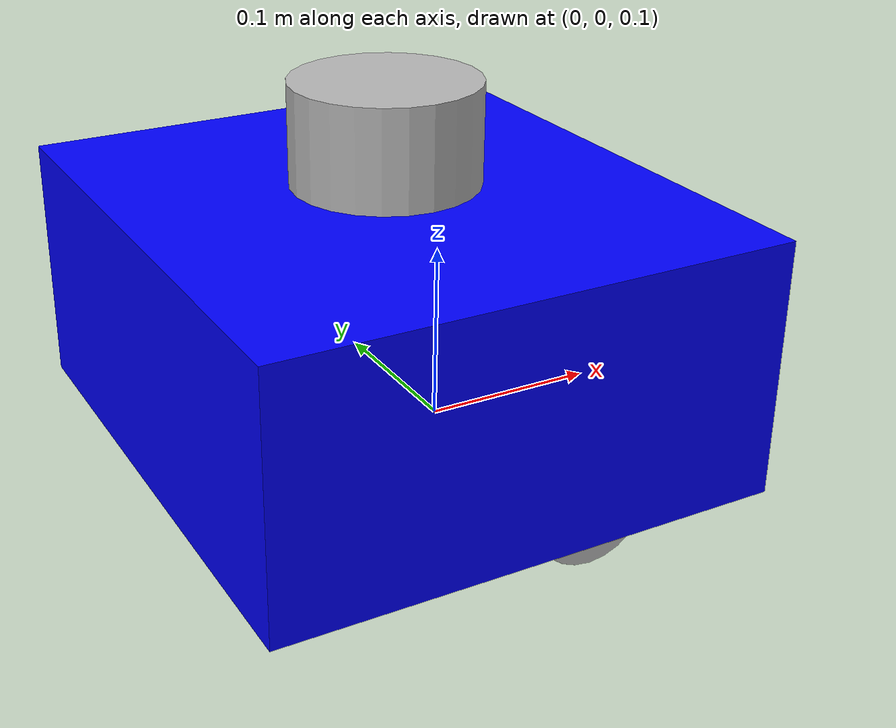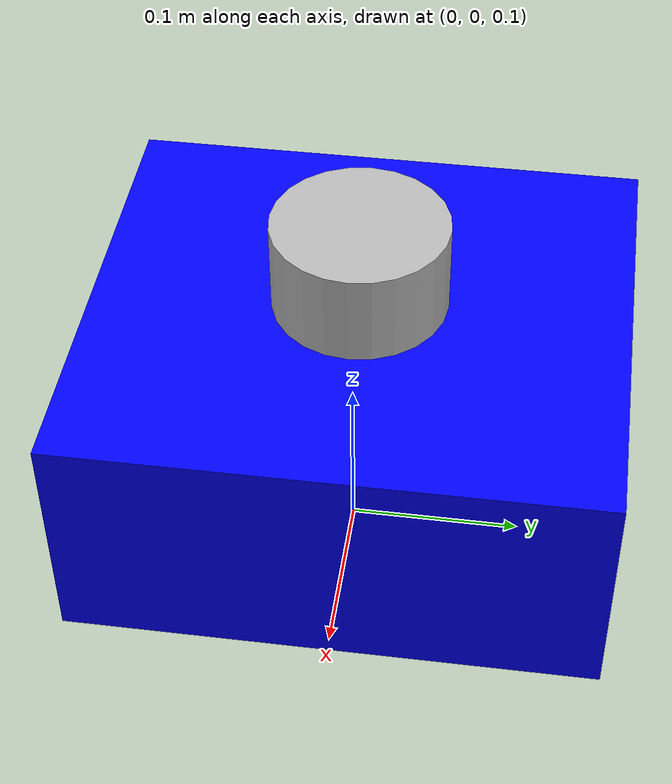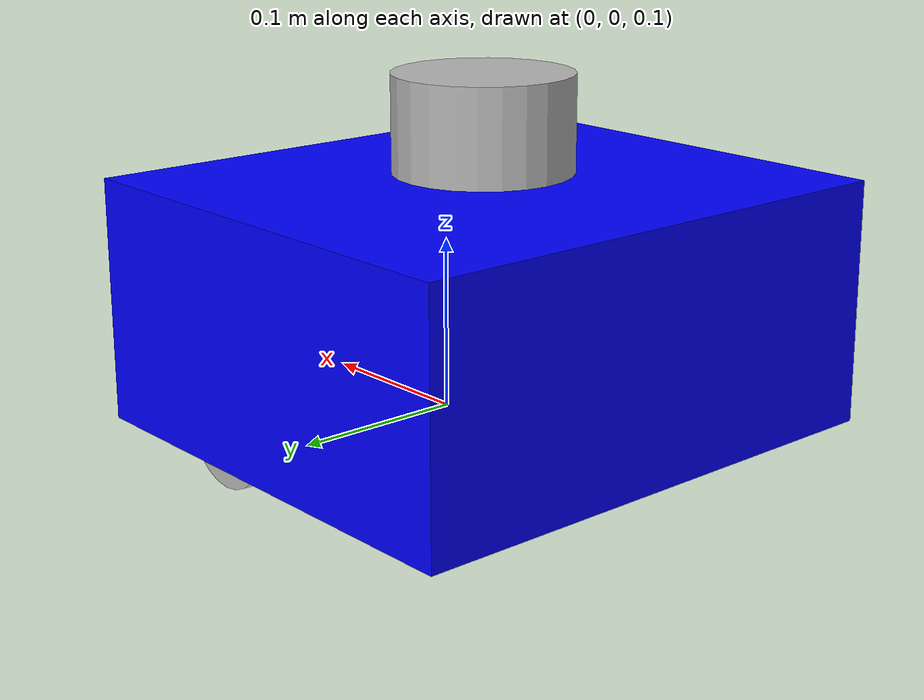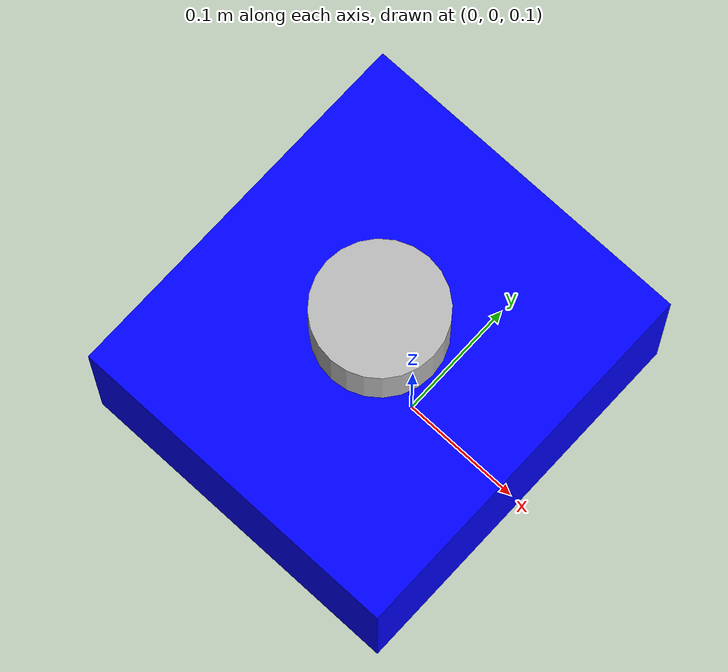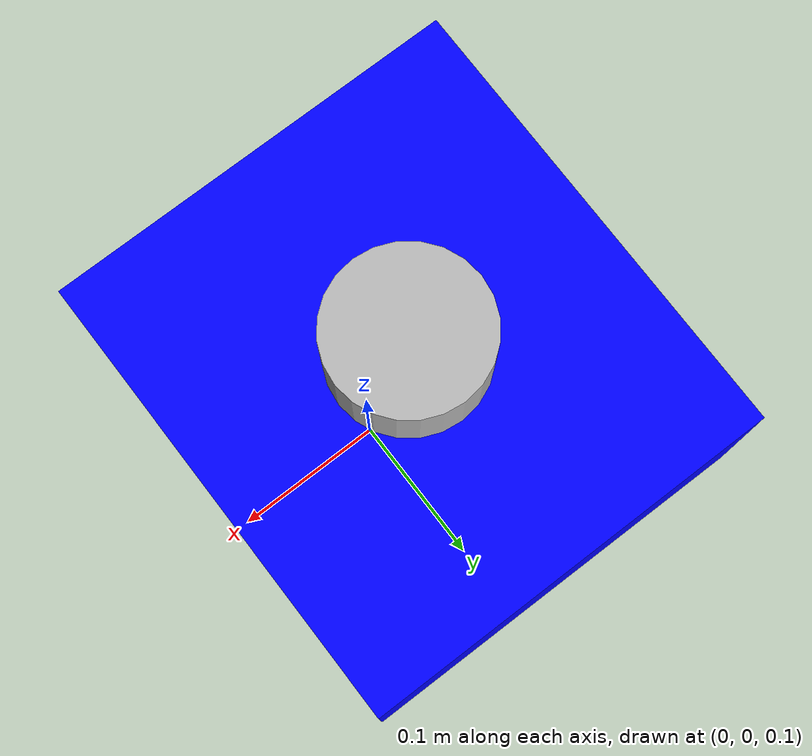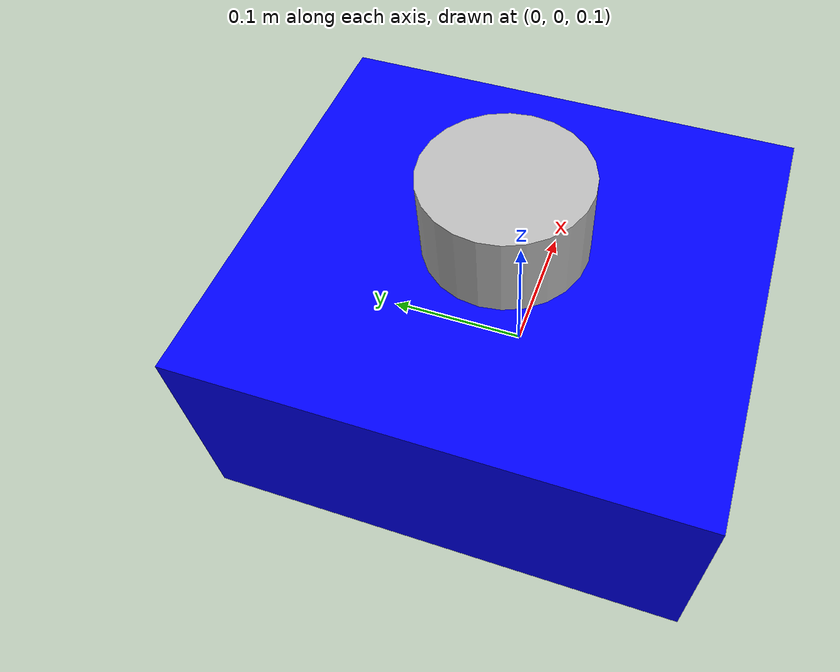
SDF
<sdf version="1.9"><world name="phase5_watchdog_fixture">
      <physics name="physics" type="ignored"><max_step_size>0.001</max_step_size><real_time_factor>1</real_time_factor></physics>
      <gravity>0 0 -9.8</gravity>
      <plugin filename="gz-sim-physics-system" name="gz::sim::systems::Physics" />
      <plugin filename="gz-sim-user-commands-system" name="gz::sim::systems::UserCommands" />
      <model name="ground"><static>true</static><link name="ground">
        <collision name="ground"><geometry><plane><normal>0 0 1</normal><size>20 20</size></plane></geometry></collision>
      </link></model><model name="robot_1">
    <pose>0 0 0.1 0 0 0</pose>
    <canonical_link>base_link</canonical_link><link name="base_footprint">
      <inertial>
        <mass>0.1</mass>
        <inertia><ixx>0.001</ixx><iyy>0.001</iyy><izz>0.001</izz></inertia>
      </inertial>
    </link>
    <link name="base_link">
      <inertial>
        <mass>1.37</mass>
        <inertia><ixx>0.0087</ixx><iyy>0.0086</iyy><izz>0.0146</izz></inertia>
      </inertial>
      <collision name="base_collision">
        <pose>-0.032 0 0.07 0 0 0</pose>
        <geometry><box><size>0.28 0.31 0.14</size></box></geometry>
      </collision>
      <visual name="base_visual">
        <pose>-0.032 0 0.07 0 0 0</pose>
        <geometry><box><size>0.28 0.31 0.14</size></box></geometry>
        <material><ambient>0.0 0.0 1.0 1</ambient><diffuse>0.0 0.0 1.0 1</diffuse></material>
      </visual>
    </link>
    <link name="wheel_left_link">
      <pose>0 0.144 0.023 -1.57 0 0</pose>
      <inertial>
        <mass>0.028</mass>
        <inertia><ixx>1.1e-5</ixx><iyy>1.1e-5</iyy><izz>2.1e-5</izz></inertia>
      </inertial>
      <collision name="left_wheel_collision">
        <geometry><cylinder><radius>0.033</radius><length>0.018</length></cylinder></geometry>
        <surface>
          <friction>
            <ode><mu>1.0</mu><mu2>1.0</mu2></ode>
            <bullet><friction>1.0</friction><friction2>1.0</friction2></bullet>
          </friction>
        </surface>
      </collision>
      <visual name="left_wheel_visual">
        <geometry><cylinder><radius>0.033</radius><length>0.018</length></cylinder></geometry>
      </visual>
    </link>
    <link name="wheel_right_link">
      <pose>0 -0.144 0.023 -1.57 0 0</pose>
      <inertial>
        <mass>0.028</mass>
        <inertia><ixx>1.1e-5</ixx><iyy>1.1e-5</iyy><izz>2.1e-5</izz></inertia>
      </inertial>
      <collision name="right_wheel_collision">
        <geometry><cylinder><radius>0.033</radius><length>0.018</length></cylinder></geometry>
        <surface>
          <friction>
            <ode><mu>1.0</mu><mu2>1.0</mu2></ode>
            <bullet><friction>1.0</friction><friction2>1.0</friction2></bullet>
          </friction>
        </surface>
      </collision>
      <visual name="right_wheel_visual">
        <geometry><cylinder><radius>0.033</radius><length>0.018</length></cylinder></geometry>
      </visual>
    </link>
    <link name="base_scan">
      <pose>-0.032 0 0.172 0 0 0</pose>
      <inertial>
        <mass>0.114</mass>
        <inertia><ixx>0.001</ixx><iyy>0.001</iyy><izz>0.001</izz></inertia>
      </inertial>
      <collision name="lidar_collision">
        <geometry><cylinder><radius>0.0508</radius><length>0.055</length></cylinder></geometry>
      </collision>
      <visual name="lidar_visual">
        <geometry><cylinder><radius>0.0508</radius><length>0.055</length></cylinder></geometry>
      </visual>
      </link>
    <link name="imu_link">
      <pose>0 0 0.068 0 0 0</pose>
      <inertial>
        <mass>0.001</mass>
        <inertia><ixx>0.0001</ixx><iyy>0.0001</iyy><izz>0.0001</izz></inertia>
      </inertial>
      </link>
    <joint name="base_joint" type="fixed">
      <parent>base_footprint</parent>
      <child>base_link</child>
    </joint>
    <joint name="left_wheel_joint" type="revolute">
      <parent>base_link</parent>
      <child>wheel_left_link</child>
      <axis>
        <xyz>0 0 1</xyz>
        <limit>
          <lower>-1e16</lower>
          <upper>1e16</upper>
          <effort>1000</effort>
          <velocity>1000</velocity>
        </limit>
        <dynamics><friction>0.1</friction></dynamics>
      </axis>
    </joint>
    <joint name="right_wheel_joint" type="revolute">
      <parent>base_link</parent>
      <child>wheel_right_link</child>
      <axis>
        <xyz>0 0 1</xyz>
        <limit>
          <lower>-1e16</lower>
          <upper>1e16</upper>
          <effort>1000</effort>
          <velocity>1000</velocity>
        </limit>
        <dynamics><friction>0.1</friction></dynamics>
      </axis>
    </joint>
    <joint name="lidar_joint" type="fixed">
      <parent>base_link</parent>
      <child>base_scan</child>
    </joint>
    <joint name="imu_joint" type="fixed">
      <parent>base_link</parent>
      <child>imu_link</child>
    </joint>
    <plugin filename="gz-sim-diff-drive-system" name="gz::sim::systems::DiffDrive">
      <left_joint>left_wheel_joint</left_joint>
      <right_joint>right_wheel_joint</right_joint>
      <wheel_separation>0.287</wheel_separation>
      <wheel_radius>0.033</wheel_radius>
      <odom_publish_frequency>200.0</odom_publish_frequency>
      <topic>/phase5/internal_drive</topic>
      <odom_topic>/robot_1/odom</odom_topic>
      <frame_id>odom</frame_id>
      <child_frame_id>base_footprint</child_frame_id>
      <tf_topic>/robot_1/tf</tf_topic>
    </plugin>
  <plugin filename="libphase5_drive_watchdog.so" name="phase5::DriveWatchdog"><output_topic>/phase5/internal_drive</output_topic><prefix>/phase5/drive</prefix></plugin></model></world></sdf>
